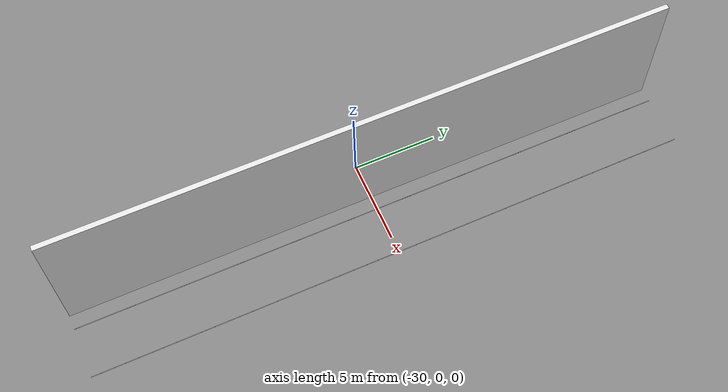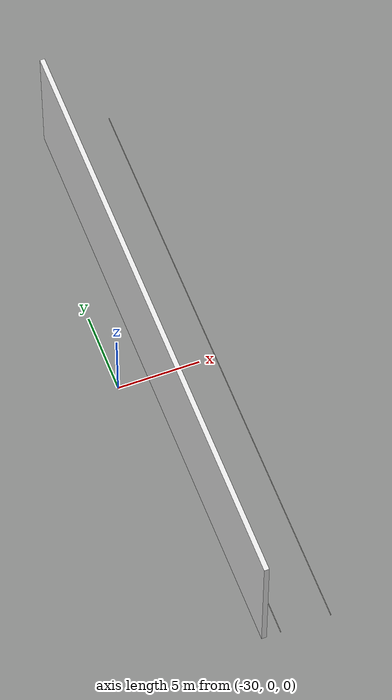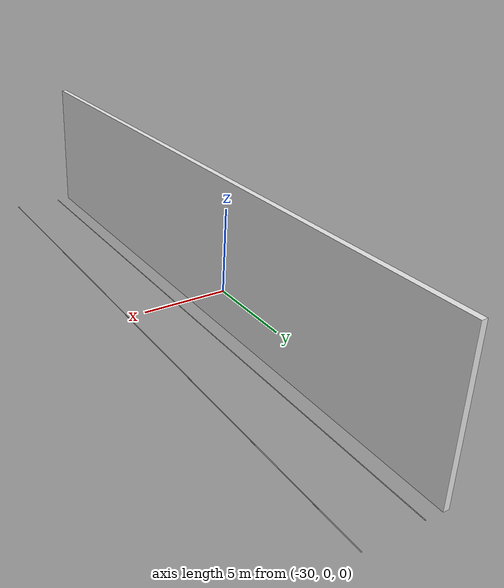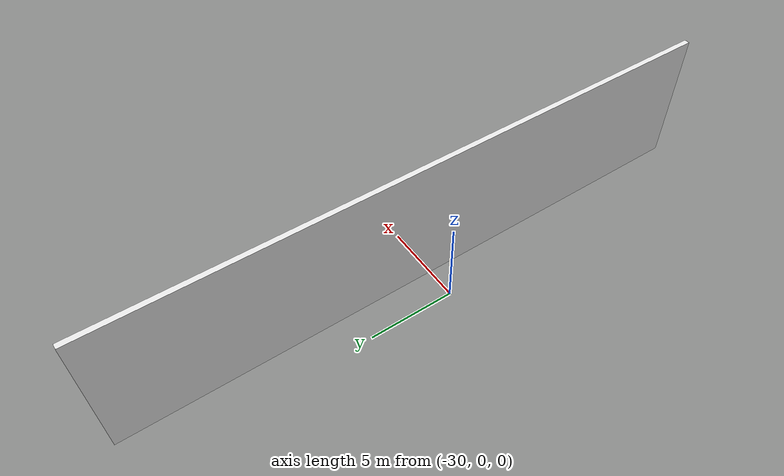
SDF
<sdf version="1.6">
 <world name="aws_industrial_warehouse">
  <model name="wall_west">
   <static>true</static>
   <pose>-28 0 4 0 0 0</pose>
   <link name="l">
    <collision name="c">
     <geometry><box><size>0.3 36 8</size></box></geometry>
     <surface><friction><ode><mu>1.0</mu><mu2>1.0</mu2></ode></friction></surface>
    </collision>
    <visual name="v">
     <geometry><box><size>0.3 36 8</size></box></geometry>
     <material><ambient>0.85 0.85 0.85 1</ambient><diffuse>0.90 0.90 0.90 1</diffuse></material>
    </visual>
   </link>
  </model>
  <model name="jnt_NS_0">
   <static>true</static>
   <pose>-27 0 0.001 0 0 0</pose>
   <link name="l">
    <visual name="v">
     <geometry><box><size>0.04 36.0 0.002</size></box></geometry>
     <material><ambient>0.58 0.58 0.57 1</ambient><diffuse>0.63 0.63 0.61 1</diffuse></material>
    </visual>
   </link>
  </model>
  <model name="jnt_NS_1">
   <static>true</static>
   <pose>-24 0 0.001 0 0 0</pose>
   <link name="l">
    <visual name="v">
     <geometry><box><size>0.04 36.0 0.002</size></box></geometry>
     <material><ambient>0.58 0.58 0.57 1</ambient><diffuse>0.63 0.63 0.61 1</diffuse></material>
    </visual>
   </link>
  </model>
 </world>
</sdf>
